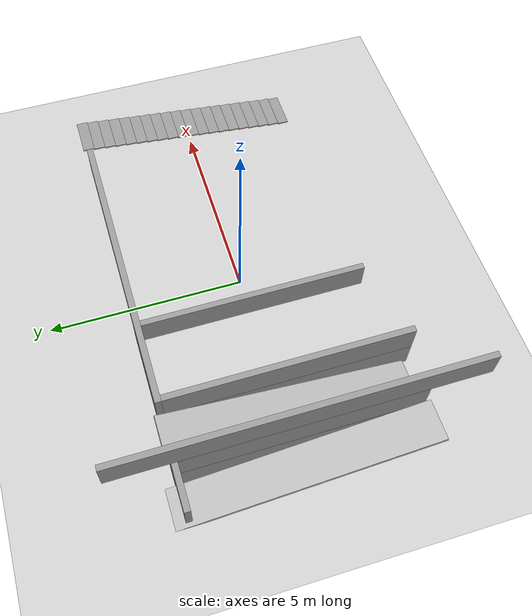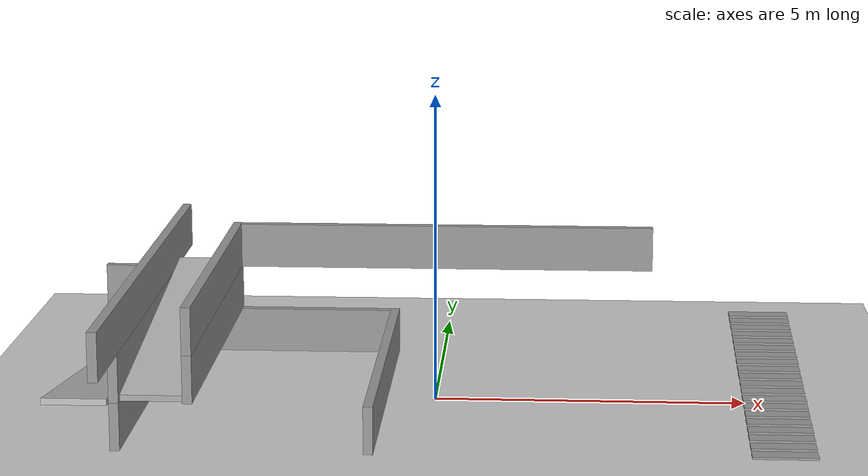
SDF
<sdf version="1.7">
 <world name="default">
  <model name="slope">
   <static>1</static>
   <pose>-4.15271 0.094007 1.1727 0 -0.126025 1.5708</pose>
   <link name="link">
    <collision name="collision"><geometry><box><size>6 1 0.1</size></box></geometry></collision>
    <visual name="visual"><geometry><box><size>6 1 0.1</size></box></geometry></visual>
   </link>
  </model>
  <model name="ground_plane">
   <static>1</static>
   <link name="link">
    <collision name="collision">
     <geometry><plane><normal>0 0 1</normal><size>100 100</size></plane></geometry>
     <surface>
      <contact><collide_bitmask>65535</collide_bitmask></contact>
      <friction><ode><mu>100</mu><mu2>50</mu2></ode></friction>
     </surface>
    </collision>
    <visual name="visual">
     <cast_shadows>0</cast_shadows>
     <geometry><plane><normal>0 0 1</normal><size>100 100</size></plane></geometry>
     <material>
      <script><uri>file://media/materials/scripts/gazebo.material</uri><name>Gazebo/Grey</name></script>
     </material>
    </visual>
   </link>
  </model>
  <model name="building2">
   <pose>0.104983 -0.148677 0 0 -0 0</pose>
   <link name="Stairs_3">
    <visual name="Stairs_3_Visual_0">
     <pose>5.31285 -2.6489 0.01875 0 -0 -3.14159</pose>
     <geometry><box><size>1 0.3 0.0375</size></box></geometry>
     <material>
      <script><uri>file://media/materials/scripts/gazebo.material</uri><name>Gazebo/Grey</name></script>
      <ambient>1 1 1 1</ambient>
     </material>
     <meta><layer>0</layer></meta>
    </visual>
    <collision name="Stairs_3_Collision_0">
     <geometry><box><size>1 0.3 0.0375</size></box></geometry>
     <pose>5.31285 -2.6489 0.01875 0 -0 -3.14159</pose>
    </collision>
    <visual name="Stairs_3_Visual_1">
     <pose>5.31285 -2.3489 0.05625 0 -0 -3.14159</pose>
     <geometry><box><size>1 0.3 0.0375</size></box></geometry>
     <material>
      <script><uri>file://media/materials/scripts/gazebo.material</uri><name>Gazebo/Grey</name></script>
      <ambient>1 1 1 1</ambient>
     </material>
     <meta><layer>0</layer></meta>
    </visual>
    <collision name="Stairs_3_Collision_1">
     <geometry><box><size>1 0.3 0.0375</size></box></geometry>
     <pose>5.31285 -2.3489 0.05625 0 -0 -3.14159</pose>
    </collision>
    <visual name="Stairs_3_Visual_2">
     <pose>5.31285 -2.0489 0.09375 0 -0 -3.14159</pose>
     <geometry><box><size>1 0.3 0.0375</size></box></geometry>
     <material>
      <script><uri>file://media/materials/scripts/gazebo.material</uri><name>Gazebo/Grey</name></script>
      <ambient>1 1 1 1</ambient>
     </material>
     <meta><layer>0</layer></meta>
    </visual>
    <collision name="Stairs_3_Collision_2">
     <geometry><box><size>1 0.3 0.0375</size></box></geometry>
     <pose>5.31285 -2.0489 0.09375 0 -0 -3.14159</pose>
    </collision>
    <visual name="Stairs_3_Visual_3">
     <pose>5.31285 -1.7489 0.13125 0 -0 -3.14159</pose>
     <geometry><box><size>1 0.3 0.0375</size></box></geometry>
     <material>
      <script><uri>file://media/materials/scripts/gazebo.material</uri><name>Gazebo/Grey</name></script>
      <ambient>1 1 1 1</ambient>
     </material>
     <meta><layer>0</layer></meta>
    </visual>
    <collision name="Stairs_3_Collision_3">
     <geometry><box><size>1 0.3 0.0375</size></box></geometry>
     <pose>5.31285 -1.7489 0.13125 0 -0 -3.14159</pose>
    </collision>
    <visual name="Stairs_3_Visual_4">
     <pose>5.31285 -1.4489 0.16875 0 -0 -3.14159</pose>
     <geometry><box><size>1 0.3 0.0375</size></box></geometry>
     <material>
      <script><uri>file://media/materials/scripts/gazebo.material</uri><name>Gazebo/Grey</name></script>
      <ambient>1 1 1 1</ambient>
     </material>
     <meta><layer>0</layer></meta>
    </visual>
    <collision name="Stairs_3_Collision_4">
     <geometry><box><size>1 0.3 0.0375</size></box></geometry>
     <pose>5.31285 -1.4489 0.16875 0 -0 -3.14159</pose>
    </collision>
    <visual name="Stairs_3_Visual_5">
     <pose>5.31285 -1.1489 0.20625 0 -0 -3.14159</pose>
     <geometry><box><size>1 0.3 0.0375</size></box></geometry>
     <material>
      <script><uri>file://media/materials/scripts/gazebo.material</uri><name>Gazebo/Grey</name></script>
      <ambient>1 1 1 1</ambient>
     </material>
     <meta><layer>0</layer></meta>
    </visual>
    <collision name="Stairs_3_Collision_5">
     <geometry><box><size>1 0.3 0.0375</size></box></geometry>
     <pose>5.31285 -1.1489 0.20625 0 -0 -3.14159</pose>
    </collision>
    <visual name="Stairs_3_Visual_6">
     <pose>5.31285 -0.848902 0.24375 0 -0 -3.14159</pose>
     <geometry><box><size>1 0.3 0.0375</size></box></geometry>
     <material>
      <script><uri>file://media/materials/scripts/gazebo.material</uri><name>Gazebo/Grey</name></script>
      <ambient>1 1 1 1</ambient>
     </material>
     <meta><layer>0</layer></meta>
    </visual>
    <collision name="Stairs_3_Collision_6">
     <geometry><box><size>1 0.3 0.0375</size></box></geometry>
     <pose>5.31285 -0.848902 0.24375 0 -0 -3.14159</pose>
    </collision>
    <visual name="Stairs_3_Visual_7">
     <pose>5.31285 -0.548902 0.28125 0 -0 -3.14159</pose>
     <geometry><box><size>1 0.3 0.0375</size></box></geometry>
     <material>
      <script><uri>file://media/materials/scripts/gazebo.material</uri><name>Gazebo/Grey</name></script>
      <ambient>1 1 1 1</ambient>
     </material>
     <meta><layer>0</layer></meta>
    </visual>
    <collision name="Stairs_3_Collision_7">
     <geometry><box><size>1 0.3 0.0375</size></box></geometry>
     <pose>5.31285 -0.548902 0.28125 0 -0 -3.14159</pose>
    </collision>
    <visual name="Stairs_3_Visual_8">
     <pose>5.31285 -0.248901 0.31875 0 -0 -3.14159</pose>
     <geometry><box><size>1 0.3 0.0375</size></box></geometry>
     <material>
      <script><uri>file://media/materials/scripts/gazebo.material</uri><name>Gazebo/Grey</name></script>
      <ambient>1 1 1 1</ambient>
     </material>
     <meta><layer>0</layer></meta>
    </visual>
    <collision name="Stairs_3_Collision_8">
     <geometry><box><size>1 0.3 0.0375</size></box></geometry>
     <pose>5.31285 -0.248901 0.31875 0 -0 -3.14159</pose>
    </collision>
    <visual name="Stairs_3_Visual_9">
     <pose>5.31285 0.051098 0.35625 0 -0 -3.14159</pose>
     <geometry><box><size>1 0.3 0.0375</size></box></geometry>
     <material>
      <script><uri>file://media/materials/scripts/gazebo.material</uri><name>Gazebo/Grey</name></script>
      <ambient>1 1 1 1</ambient>
     </material>
     <meta><layer>0</layer></meta>
    </visual>
    <collision name="Stairs_3_Collision_9">
     <geometry><box><size>1 0.3 0.0375</size></box></geometry>
     <pose>5.31285 0.051098 0.35625 0 -0 -3.14159</pose>
    </collision>
    <visual name="Stairs_3_Visual_10">
     <pose>5.31285 0.351099 0.39375 0 -0 -3.14159</pose>
     <geometry><box><size>1 0.3 0.0375</size></box></geometry>
     <material>
      <script><uri>file://media/materials/scripts/gazebo.material</uri><name>Gazebo/Grey</name></script>
      <ambient>1 1 1 1</ambient>
     </material>
     <meta><layer>0</layer></meta>
    </visual>
    <collision name="Stairs_3_Collision_10">
     <geometry><box><size>1 0.3 0.0375</size></box></geometry>
     <pose>5.31285 0.351099 0.39375 0 -0 -3.14159</pose>
    </collision>
    <visual name="Stairs_3_Visual_11">
     <pose>5.31285 0.651098 0.43125 0 -0 -3.14159</pose>
     <geometry><box><size>1 0.3 0.0375</size></box></geometry>
     <material>
      <script><uri>file://media/materials/scripts/gazebo.material</uri><name>Gazebo/Grey</name></script>
      <ambient>1 1 1 1</ambient>
     </material>
     <meta><layer>0</layer></meta>
    </visual>
    <collision name="Stairs_3_Collision_11">
     <geometry><box><size>1 0.3 0.0375</size></box></geometry>
     <pose>5.31285 0.651098 0.43125 0 -0 -3.14159</pose>
    </collision>
    <visual name="Stairs_3_Visual_12">
     <pose>5.31285 0.951098 0.46875 0 -0 -3.14159</pose>
     <geometry><box><size>1 0.3 0.0375</size></box></geometry>
     <material>
      <script><uri>file://media/materials/scripts/gazebo.material</uri><name>Gazebo/Grey</name></script>
      <ambient>1 1 1 1</ambient>
     </material>
     <meta><layer>0</layer></meta>
    </visual>
    <collision name="Stairs_3_Collision_12">
     <geometry><box><size>1 0.3 0.0375</size></box></geometry>
     <pose>5.31285 0.951098 0.46875 0 -0 -3.14159</pose>
    </collision>
    <visual name="Stairs_3_Visual_13">
     <pose>5.31285 1.2511 0.50625 0 -0 -3.14159</pose>
     <geometry><box><size>1 0.3 0.0375</size></box></geometry>
     <material>
      <script><uri>file://media/materials/scripts/gazebo.material</uri><name>Gazebo/Grey</name></script>
      <ambient>1 1 1 1</ambient>
     </material>
     <meta><layer>0</layer></meta>
    </visual>
    <collision name="Stairs_3_Collision_13">
     <geometry><box><size>1 0.3 0.0375</size></box></geometry>
     <pose>5.31285 1.2511 0.50625 0 -0 -3.14159</pose>
    </collision>
    <visual name="Stairs_3_Visual_14">
     <pose>5.31285 1.5511 0.54375 0 -0 -3.14159</pose>
     <geometry><box><size>1 0.3 0.0375</size></box></geometry>
     <material>
      <script><uri>file://media/materials/scripts/gazebo.material</uri><name>Gazebo/Grey</name></script>
      <ambient>1 1 1 1</ambient>
     </material>
     <meta><layer>0</layer></meta>
    </visual>
    <collision name="Stairs_3_Collision_14">
     <geometry><box><size>1 0.3 0.0375</size></box></geometry>
     <pose>5.31285 1.5511 0.54375 0 -0 -3.14159</pose>
    </collision>
    <visual name="Stairs_3_Visual_15">
     <pose>5.31285 1.8511 0.58125 0 -0 -3.14159</pose>
     <geometry><box><size>1 0.3 0.0375</size></box></geometry>
     <material>
      <script><uri>file://media/materials/scripts/gazebo.material</uri><name>Gazebo/Grey</name></script>
      <ambient>1 1 1 1</ambient>
     </material>
     <meta><layer>0</layer></meta>
    </visual>
    <collision name="Stairs_3_Collision_15">
     <geometry><box><size>1 0.3 0.0375</size></box></geometry>
     <pose>5.31285 1.8511 0.58125 0 -0 -3.14159</pose>
    </collision>
    <visual name="Stairs_3_Visual_16">
     <pose>5.31285 2.1511 0.61875 0 -0 -3.14159</pose>
     <geometry><box><size>1 0.3 0.0375</size></box></geometry>
     <material>
      <script><uri>file://media/materials/scripts/gazebo.material</uri><name>Gazebo/Grey</name></script>
      <ambient>1 1 1 1</ambient>
     </material>
     <meta><layer>0</layer></meta>
    </visual>
    <collision name="Stairs_3_Collision_16">
     <geometry><box><size>1 0.3 0.0375</size></box></geometry>
     <pose>5.31285 2.1511 0.61875 0 -0 -3.14159</pose>
    </collision>
    <visual name="Stairs_3_Visual_17">
     <pose>5.31285 2.4511 0.65625 0 -0 -3.14159</pose>
     <geometry><box><size>1 0.3 0.0375</size></box></geometry>
     <material>
      <script><uri>file://media/materials/scripts/gazebo.material</uri><name>Gazebo/Grey</name></script>
      <ambient>1 1 1 1</ambient>
     </material>
     <meta><layer>0</layer></meta>
    </visual>
    <collision name="Stairs_3_Collision_17">
     <geometry><box><size>1 0.3 0.0375</size></box></geometry>
     <pose>5.31285 2.4511 0.65625 0 -0 -3.14159</pose>
    </collision>
    <visual name="Stairs_3_Visual_18">
     <pose>5.31285 2.7511 0.69375 0 -0 -3.14159</pose>
     <geometry><box><size>1 0.3 0.0375</size></box></geometry>
     <material>
      <script><uri>file://media/materials/scripts/gazebo.material</uri><name>Gazebo/Grey</name></script>
      <ambient>1 1 1 1</ambient>
     </material>
     <meta><layer>0</layer></meta>
    </visual>
    <collision name="Stairs_3_Collision_18">
     <geometry><box><size>1 0.3 0.0375</size></box></geometry>
     <pose>5.31285 2.7511 0.69375 0 -0 -3.14159</pose>
    </collision>
    <visual name="Stairs_3_Visual_19">
     <pose>5.31285 3.0511 0.73125 0 -0 -3.14159</pose>
     <geometry><box><size>1 0.3 0.0375</size></box></geometry>
     <material>
      <script><uri>file://media/materials/scripts/gazebo.material</uri><name>Gazebo/Grey</name></script>
      <ambient>1 1 1 1</ambient>
     </material>
     <meta><layer>0</layer></meta>
    </visual>
    <collision name="Stairs_3_Collision_19">
     <geometry><box><size>1 0.3 0.0375</size></box></geometry>
     <pose>5.31285 3.0511 0.73125 0 -0 -3.14159</pose>
    </collision>
   </link>
   <link name="Wall_10">
    <collision name="Wall_10_Collision">
     <geometry><box><size>6 0.15 0.75</size></box></geometry>
     <pose>0 0 0.375 0 -0 0</pose>
    </collision>
    <visual name="Wall_10_Visual">
     <pose>0 0 0.375 0 -0 0</pose>
     <geometry><box><size>6 0.15 0.75</size></box></geometry>
     <material>
      <script><uri>file://media/materials/scripts/gazebo.material</uri><name>Gazebo/Grey</name></script>
      <ambient>1 1 1 1</ambient>
     </material>
     <meta><layer>0</layer></meta>
    </visual>
    <pose>-0.963573 0.127005 0 0 -0 -1.5708</pose>
   </link>
   <link name="Wall_20">
    <collision name="Wall_20_Collision">
     <geometry><box><size>6 0.15 0.75</size></box></geometry>
     <pose>0 0 0.375 0 -0 0</pose>
    </collision>
    <visual name="Wall_20_Visual">
     <pose>0 0 0.375 0 -0 0</pose>
     <geometry><box><size>6 0.15 0.75</size></box></geometry>
     <material>
      <script><uri>file://media/materials/scripts/gazebo.material</uri><name>Gazebo/Grey</name></script>
      <ambient>1 1 1 1</ambient>
     </material>
     <meta><layer>1</layer></meta>
    </visual>
    <pose>-4.81357 0.127005 0.75 0 -0 -1.5708</pose>
   </link>
   <link name="Wall_27">
    <collision name="Wall_27_Collision">
     <geometry><box><size>1.25 0.15 0.75</size></box></geometry>
     <pose>0 0 0.375 0 -0 0</pose>
    </collision>
    <visual name="Wall_27_Visual">
     <pose>0 0 0.375 0 -0 0</pose>
     <geometry><box><size>1.25 0.15 0.75</size></box></geometry>
     <material>
      <script><uri>file://media/materials/scripts/gazebo.material</uri><name>Gazebo/Grey</name></script>
      <ambient>1 1 1 1</ambient>
     </material>
     <meta><layer>1</layer></meta>
    </visual>
    <pose>-5.36357 3.052 0.75 0 -0 3.14159</pose>
   </link>
   <link name="Wall_31">
    <collision name="Wall_31_Collision">
     <geometry><box><size>6 0.15 0.75</size></box></geometry>
     <pose>0 0 0.375 0 -0 0</pose>
    </collision>
    <visual name="Wall_31_Visual">
     <pose>0 0 0.375 0 -0 0</pose>
     <geometry><box><size>6 0.15 0.75</size></box></geometry>
     <material>
      <script><uri>file://media/materials/scripts/gazebo.material</uri><name>Gazebo/Grey</name></script>
      <ambient>1 1 1 1</ambient>
     </material>
     <meta><layer>1</layer></meta>
    </visual>
    <pose>-3.69457 0.144005 0.75 0 -0 -1.5708</pose>
   </link>
   <link name="Wall_49">
    <collision name="Wall_49_Collision">
     <geometry><box><size>9 0.15 0.75</size></box></geometry>
     <pose>0 0 0.375 0 -0 0</pose>
    </collision>
    <visual name="Wall_49_Visual">
     <pose>0 0 0.375 0 -0 0</pose>
     <geometry><box><size>9 0.15 0.75</size></box></geometry>
     <material>
      <script><uri>file://media/materials/scripts/gazebo.material</uri><name>Gazebo/Grey</name></script>
      <ambient>1 1 1 1</ambient>
     </material>
     <meta><layer>2</layer></meta>
    </visual>
    <pose>-4.81357 0.127005 1.5 0 -0 -1.5708</pose>
   </link>
   <link name="Wall_5">
    <collision name="Wall_5_Collision">
     <geometry><box><size>6 0.15 0.75</size></box></geometry>
     <pose>0 0 0.375 0 -0 0</pose>
    </collision>
    <visual name="Wall_5_Visual">
     <pose>0 0 0.375 0 -0 0</pose>
     <geometry><box><size>6 0.15 0.75</size></box></geometry>
     <material>
      <script><uri>file://media/materials/scripts/gazebo.material</uri><name>Gazebo/Grey</name></script>
      <ambient>1 1 1 1</ambient>
     </material>
     <meta><layer>0</layer></meta>
    </visual>
    <pose>-4.81357 0.127005 0 0 -0 -1.5708</pose>
   </link>
   <link name="Wall_53">
    <collision name="Wall_53_Collision">
     <geometry><box><size>6 0.15 0.75</size></box></geometry>
     <pose>0 0 0.375 0 -0 0</pose>
    </collision>
    <visual name="Wall_53_Visual">
     <pose>0 0 0.375 0 -0 0</pose>
     <geometry><box><size>6 0.15 0.75</size></box></geometry>
     <material>
      <script><uri>file://media/materials/scripts/gazebo.material</uri><name>Gazebo/Grey</name></script>
      <ambient>1 1 1 1</ambient>
     </material>
     <meta><layer>2</layer></meta>
    </visual>
    <pose>-3.69457 0.144005 1.5 0 -0 -1.5708</pose>
   </link>
   <link name="Wall_61">
    <collision name="Wall_61_Collision">
     <geometry><box><size>7.25 0.15 0.75</size></box></geometry>
     <pose>0 0 0.375 0 -0 0</pose>
    </collision>
    <visual name="Wall_61_Visual">
     <pose>0 0 0.375 0 -0 0</pose>
     <geometry><box><size>7.25 0.15 0.75</size></box></geometry>
     <material>
      <script><uri>file://media/materials/scripts/gazebo.material</uri><name>Gazebo/Grey</name></script>
      <ambient>1 1 1 1</ambient>
     </material>
     <meta><layer>2</layer></meta>
    </visual>
    <pose>-0.144573 3.06901 1.5 0 -0 0</pose>
   </link>
   <link name="Wall_9">
    <collision name="Wall_9_Collision">
     <geometry><box><size>4 0.15 0.75</size></box></geometry>
     <pose>0 0 0.375 0 -0 0</pose>
    </collision>
    <visual name="Wall_9_Visual">
     <pose>0 0 0.375 0 -0 0</pose>
     <geometry><box><size>4 0.15 0.75</size></box></geometry>
     <material>
      <script><uri>file://media/materials/scripts/gazebo.material</uri><name>Gazebo/Grey</name></script>
      <ambient>1 1 1 1</ambient>
     </material>
     <meta><layer>0</layer></meta>
    </visual>
    <pose>-2.88857 3.052 0 0 -0 0</pose>
   </link>
   <static>1</static>
  </model>
  <model name="slope_clone_1">
   <static>1</static>
   <pose>-5.28798 0.072601 0.363331 0 0.135024 1.5708</pose>
   <link name="link">
    <collision name="collision"><geometry><box><size>6.5 1 0.1</size></box></geometry></collision>
    <visual name="visual"><geometry><box><size>6.5 1 0.1</size></box></geometry></visual>
   </link>
  </model>
 </world>
</sdf>
